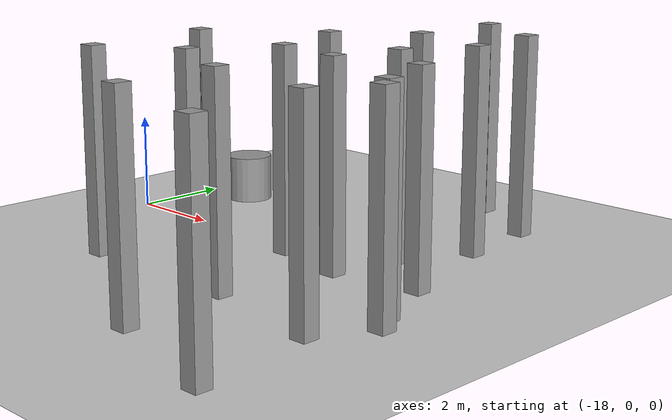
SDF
<sdf version="1.7">
 <world name="default">
  <model name="ground_plane">
   <static>1</static>
   <link name="link">
    <collision name="collision">
     <geometry><plane><normal>0 0 1</normal><size>100 100</size></plane></geometry>
     <surface>
      <contact><collide_bitmask>65535</collide_bitmask></contact>
      <friction><ode><mu>100</mu><mu2>50</mu2></ode></friction>
     </surface>
    </collision>
    <visual name="visual">
     <cast_shadows>0</cast_shadows>
     <geometry><plane><normal>0 0 1</normal><size>100 100</size></plane></geometry>
     <material>
      <script><uri>file://media/materials/scripts/gazebo.material</uri><name>Gazebo/Grey</name></script>
     </material>
    </visual>
   </link>
  </model>
  <model name="unit_cylinder_1">
   <pose>-16.8605 2.08124 0.499996 4e-06 2e-06 -0</pose>
   <link name="link">
    <inertial>
     <mass>1</mass>
     <inertia><ixx>0.145833</ixx><ixy>0</ixy><ixz>0</ixz><iyy>0.145833</iyy><iyz>0</iyz><izz>0.125</izz></inertia>
    </inertial>
    <collision name="collision">
     <geometry><cylinder><radius>0.5</radius><length>1</length></cylinder></geometry>
    </collision>
    <visual name="visual">
     <geometry><cylinder><radius>0.5</radius><length>1</length></cylinder></geometry>
     <material>
      <script><name>Gazebo/Grey</name><uri>file://media/materials/scripts/gazebo.material</uri></script>
     </material>
    </visual>
   </link>
  </model>
  <model name="unit_box_clone_9">
   <link name="link">
    <inertial>
     <mass>2.4304</mass>
     <inertia><ixx>3.54705</ixx><ixy>0</ixy><ixz>0</ixz><iyy>3.54798</iyy><iyz>0</iyz><izz>0.047215</izz></inertia>
    </inertial>
    <visual name="visual">
     <geometry><box><size>0.344761 0.338027 4.17123</size></box></geometry>
     <material>
      <script><name>Gazebo/Grey</name><uri>file://media/materials/scripts/gazebo.material</uri></script>
      <shader type="pixel"><normal_map>__default__</normal_map></shader>
      <ambient>0.3 0.3 0.3 1</ambient>
      <diffuse>0.7 0.7 0.7 1</diffuse>
      <specular>0.01 0.01 0.01 1</specular>
      <emissive>0 0 0 1</emissive>
     </material>
    </visual>
    <collision name="collision">
     <geometry><box><size>0.344761 0.338027 4.17123</size></box></geometry>
     <surface>
      <friction>
       <ode><mu>1</mu><mu2>1</mu2><fdir1>0 0 0</fdir1><slip1>0</slip1><slip2>0</slip2></ode>
       <torsional>
        <coefficient>1</coefficient>
        <patch_radius>0</patch_radius>
        <surface_radius>0</surface_radius>
        <use_patch_radius>1</use_patch_radius>
        <ode><slip>0</slip></ode>
       </torsional>
      </friction>
      <bounce><restitution_coefficient>0</restitution_coefficient><threshold>1e+06</threshold></bounce>
      <contact>
       <collide_without_contact>0</collide_without_contact>
       <collide_without_contact_bitmask>1</collide_without_contact_bitmask>
       <collide_bitmask>1</collide_bitmask>
       <ode>
        <soft_cfm>0</soft_cfm>
        <soft_erp>0.2</soft_erp>
        <kp>1e+13</kp>
        <kd>1</kd>
        <max_vel>0.01</max_vel>
        <min_depth>0</min_depth>
       </ode>
       <bullet>
        <split_impulse>1</split_impulse>
        <split_impulse_penetration_threshold>-0.01</split_impulse_penetration_threshold>
        <soft_cfm>0</soft_cfm>
        <soft_erp>0.2</soft_erp>
        <kp>1e+13</kp>
        <kd>1</kd>
       </bullet>
      </contact>
     </surface>
    </collision>
   </link>
   <static>0</static>
   <pose>-9.03364 -1.83112 2.08562 8e-06 2e-06 0.001634</pose>
  </model>
  <model name="unit_box_clone_12">
   <link name="link">
    <inertial>
     <mass>2.4304</mass>
     <inertia><ixx>3.54705</ixx><ixy>0</ixy><ixz>0</ixz><iyy>3.54798</iyy><iyz>0</iyz><izz>0.047215</izz></inertia>
    </inertial>
    <visual name="visual">
     <geometry><box><size>0.344761 0.338027 4.17123</size></box></geometry>
     <material>
      <script><name>Gazebo/Grey</name><uri>file://media/materials/scripts/gazebo.material</uri></script>
      <shader type="pixel"><normal_map>__default__</normal_map></shader>
      <ambient>0.3 0.3 0.3 1</ambient>
      <diffuse>0.7 0.7 0.7 1</diffuse>
      <specular>0.01 0.01 0.01 1</specular>
      <emissive>0 0 0 1</emissive>
     </material>
    </visual>
    <collision name="collision">
     <geometry><box><size>0.344761 0.338027 4.17123</size></box></geometry>
     <surface>
      <friction>
       <ode><mu>1</mu><mu2>1</mu2><fdir1>0 0 0</fdir1><slip1>0</slip1><slip2>0</slip2></ode>
       <torsional>
        <coefficient>1</coefficient>
        <patch_radius>0</patch_radius>
        <surface_radius>0</surface_radius>
        <use_patch_radius>1</use_patch_radius>
        <ode><slip>0</slip></ode>
       </torsional>
      </friction>
      <bounce><restitution_coefficient>0</restitution_coefficient><threshold>1e+06</threshold></bounce>
      <contact>
       <collide_without_contact>0</collide_without_contact>
       <collide_without_contact_bitmask>1</collide_without_contact_bitmask>
       <collide_bitmask>1</collide_bitmask>
       <ode>
        <soft_cfm>0</soft_cfm>
        <soft_erp>0.2</soft_erp>
        <kp>1e+13</kp>
        <kd>1</kd>
        <max_vel>0.01</max_vel>
        <min_depth>0</min_depth>
       </ode>
       <bullet>
        <split_impulse>1</split_impulse>
        <split_impulse_penetration_threshold>-0.01</split_impulse_penetration_threshold>
        <soft_cfm>0</soft_cfm>
        <soft_erp>0.2</soft_erp>
        <kp>1e+13</kp>
        <kd>1</kd>
       </bullet>
      </contact>
     </surface>
    </collision>
   </link>
   <static>0</static>
   <pose>-8.71743 -2.2826 2.08562 0 -1e-06 0.001927</pose>
  </model>
  <model name="unit_box_clone_14">
   <link name="link">
    <inertial>
     <mass>2.4304</mass>
     <inertia><ixx>3.54705</ixx><ixy>0</ixy><ixz>0</ixz><iyy>3.54798</iyy><iyz>0</iyz><izz>0.047215</izz></inertia>
    </inertial>
    <visual name="visual">
     <geometry><box><size>0.344761 0.338027 4.17123</size></box></geometry>
     <material>
      <script><name>Gazebo/Grey</name><uri>file://media/materials/scripts/gazebo.material</uri></script>
      <shader type="pixel"><normal_map>__default__</normal_map></shader>
      <ambient>0.3 0.3 0.3 1</ambient>
      <diffuse>0.7 0.7 0.7 1</diffuse>
      <specular>0.01 0.01 0.01 1</specular>
      <emissive>0 0 0 1</emissive>
     </material>
    </visual>
    <collision name="collision">
     <geometry><box><size>0.344761 0.338027 4.17123</size></box></geometry>
     <surface>
      <friction>
       <ode><mu>1</mu><mu2>1</mu2><fdir1>0 0 0</fdir1><slip1>0</slip1><slip2>0</slip2></ode>
       <torsional>
        <coefficient>1</coefficient>
        <patch_radius>0</patch_radius>
        <surface_radius>0</surface_radius>
        <use_patch_radius>1</use_patch_radius>
        <ode><slip>0</slip></ode>
       </torsional>
      </friction>
      <bounce><restitution_coefficient>0</restitution_coefficient><threshold>1e+06</threshold></bounce>
      <contact>
       <collide_without_contact>0</collide_without_contact>
       <collide_without_contact_bitmask>1</collide_without_contact_bitmask>
       <collide_bitmask>1</collide_bitmask>
       <ode>
        <soft_cfm>0</soft_cfm>
        <soft_erp>0.2</soft_erp>
        <kp>1e+13</kp>
        <kd>1</kd>
        <max_vel>0.01</max_vel>
        <min_depth>0</min_depth>
       </ode>
       <bullet>
        <split_impulse>1</split_impulse>
        <split_impulse_penetration_threshold>-0.01</split_impulse_penetration_threshold>
        <soft_cfm>0</soft_cfm>
        <soft_erp>0.2</soft_erp>
        <kp>1e+13</kp>
        <kd>1</kd>
       </bullet>
      </contact>
     </surface>
    </collision>
   </link>
   <static>0</static>
   <pose>-9.62797 -0.350891 2.08562 1e-06 1e-06 0.002027</pose>
  </model>
  <model name="unit_box_clone_15">
   <link name="link">
    <inertial>
     <mass>2.4304</mass>
     <inertia><ixx>3.54705</ixx><ixy>0</ixy><ixz>0</ixz><iyy>3.54798</iyy><iyz>0</iyz><izz>0.047215</izz></inertia>
    </inertial>
    <visual name="visual">
     <geometry><box><size>0.344761 0.338027 4.17123</size></box></geometry>
     <material>
      <script><name>Gazebo/Grey</name><uri>file://media/materials/scripts/gazebo.material</uri></script>
      <shader type="pixel"><normal_map>__default__</normal_map></shader>
      <ambient>0.3 0.3 0.3 1</ambient>
      <diffuse>0.7 0.7 0.7 1</diffuse>
      <specular>0.01 0.01 0.01 1</specular>
      <emissive>0 0 0 1</emissive>
     </material>
    </visual>
    <collision name="collision">
     <geometry><box><size>0.344761 0.338027 4.17123</size></box></geometry>
     <surface>
      <friction>
       <ode><mu>1</mu><mu2>1</mu2><fdir1>0 0 0</fdir1><slip1>0</slip1><slip2>0</slip2></ode>
       <torsional>
        <coefficient>1</coefficient>
        <patch_radius>0</patch_radius>
        <surface_radius>0</surface_radius>
        <use_patch_radius>1</use_patch_radius>
        <ode><slip>0</slip></ode>
       </torsional>
      </friction>
      <bounce><restitution_coefficient>0</restitution_coefficient><threshold>1e+06</threshold></bounce>
      <contact>
       <collide_without_contact>0</collide_without_contact>
       <collide_without_contact_bitmask>1</collide_without_contact_bitmask>
       <collide_bitmask>1</collide_bitmask>
       <ode>
        <soft_cfm>0</soft_cfm>
        <soft_erp>0.2</soft_erp>
        <kp>1e+13</kp>
        <kd>1</kd>
        <max_vel>0.01</max_vel>
        <min_depth>0</min_depth>
       </ode>
       <bullet>
        <split_impulse>1</split_impulse>
        <split_impulse_penetration_threshold>-0.01</split_impulse_penetration_threshold>
        <soft_cfm>0</soft_cfm>
        <soft_erp>0.2</soft_erp>
        <kp>1e+13</kp>
        <kd>1</kd>
       </bullet>
      </contact>
     </surface>
    </collision>
   </link>
   <static>0</static>
   <pose>-10.3749 2.15662 2.08562 -4e-06 -4e-06 0.001895</pose>
  </model>
  <model name="unit_box_clone_16">
   <link name="link">
    <inertial>
     <mass>2.4304</mass>
     <inertia><ixx>3.54705</ixx><ixy>0</ixy><ixz>0</ixz><iyy>3.54798</iyy><iyz>0</iyz><izz>0.047215</izz></inertia>
    </inertial>
    <visual name="visual">
     <geometry><box><size>0.344761 0.338027 4.17123</size></box></geometry>
     <material>
      <script><name>Gazebo/Grey</name><uri>file://media/materials/scripts/gazebo.material</uri></script>
      <shader type="pixel"><normal_map>__default__</normal_map></shader>
      <ambient>0.3 0.3 0.3 1</ambient>
      <diffuse>0.7 0.7 0.7 1</diffuse>
      <specular>0.01 0.01 0.01 1</specular>
      <emissive>0 0 0 1</emissive>
     </material>
    </visual>
    <collision name="collision">
     <geometry><box><size>0.344761 0.338027 4.17123</size></box></geometry>
     <surface>
      <friction>
       <ode><mu>1</mu><mu2>1</mu2><fdir1>0 0 0</fdir1><slip1>0</slip1><slip2>0</slip2></ode>
       <torsional>
        <coefficient>1</coefficient>
        <patch_radius>0</patch_radius>
        <surface_radius>0</surface_radius>
        <use_patch_radius>1</use_patch_radius>
        <ode><slip>0</slip></ode>
       </torsional>
      </friction>
      <bounce><restitution_coefficient>0</restitution_coefficient><threshold>1e+06</threshold></bounce>
      <contact>
       <collide_without_contact>0</collide_without_contact>
       <collide_without_contact_bitmask>1</collide_without_contact_bitmask>
       <collide_bitmask>1</collide_bitmask>
       <ode>
        <soft_cfm>0</soft_cfm>
        <soft_erp>0.2</soft_erp>
        <kp>1e+13</kp>
        <kd>1</kd>
        <max_vel>0.01</max_vel>
        <min_depth>0</min_depth>
       </ode>
       <bullet>
        <split_impulse>1</split_impulse>
        <split_impulse_penetration_threshold>-0.01</split_impulse_penetration_threshold>
        <soft_cfm>0</soft_cfm>
        <soft_erp>0.2</soft_erp>
        <kp>1e+13</kp>
        <kd>1</kd>
       </bullet>
      </contact>
     </surface>
    </collision>
   </link>
   <static>0</static>
   <pose>-11.1024 0.762889 2.08562 -4e-06 -1e-06 -0.002996</pose>
  </model>
  <model name="unit_box_clone_17">
   <link name="link">
    <inertial>
     <mass>2.4304</mass>
     <inertia><ixx>3.54705</ixx><ixy>0</ixy><ixz>0</ixz><iyy>3.54798</iyy><iyz>0</iyz><izz>0.047215</izz></inertia>
    </inertial>
    <visual name="visual">
     <geometry><box><size>0.344761 0.338027 4.17123</size></box></geometry>
     <material>
      <script><name>Gazebo/Grey</name><uri>file://media/materials/scripts/gazebo.material</uri></script>
      <shader type="pixel"><normal_map>__default__</normal_map></shader>
      <ambient>0.3 0.3 0.3 1</ambient>
      <diffuse>0.7 0.7 0.7 1</diffuse>
      <specular>0.01 0.01 0.01 1</specular>
      <emissive>0 0 0 1</emissive>
     </material>
    </visual>
    <collision name="collision">
     <geometry><box><size>0.344761 0.338027 4.17123</size></box></geometry>
     <surface>
      <friction>
       <ode><mu>1</mu><mu2>1</mu2><fdir1>0 0 0</fdir1><slip1>0</slip1><slip2>0</slip2></ode>
       <torsional>
        <coefficient>1</coefficient>
        <patch_radius>0</patch_radius>
        <surface_radius>0</surface_radius>
        <use_patch_radius>1</use_patch_radius>
        <ode><slip>0</slip></ode>
       </torsional>
      </friction>
      <bounce><restitution_coefficient>0</restitution_coefficient><threshold>1e+06</threshold></bounce>
      <contact>
       <collide_without_contact>0</collide_without_contact>
       <collide_without_contact_bitmask>1</collide_without_contact_bitmask>
       <collide_bitmask>1</collide_bitmask>
       <ode>
        <soft_cfm>0</soft_cfm>
        <soft_erp>0.2</soft_erp>
        <kp>1e+13</kp>
        <kd>1</kd>
        <max_vel>0.01</max_vel>
        <min_depth>0</min_depth>
       </ode>
       <bullet>
        <split_impulse>1</split_impulse>
        <split_impulse_penetration_threshold>-0.01</split_impulse_penetration_threshold>
        <soft_cfm>0</soft_cfm>
        <soft_erp>0.2</soft_erp>
        <kp>1e+13</kp>
        <kd>1</kd>
       </bullet>
      </contact>
     </surface>
    </collision>
   </link>
   <static>0</static>
   <pose>-12 -2.99933 2.08562 1e-06 2e-06 0.002402</pose>
  </model>
  <model name="unit_box_clone_18">
   <link name="link">
    <inertial>
     <mass>2.4304</mass>
     <inertia><ixx>3.54705</ixx><ixy>0</ixy><ixz>0</ixz><iyy>3.54798</iyy><iyz>0</iyz><izz>0.047215</izz></inertia>
    </inertial>
    <visual name="visual">
     <geometry><box><size>0.344761 0.338027 4.17123</size></box></geometry>
     <material>
      <script><name>Gazebo/Grey</name><uri>file://media/materials/scripts/gazebo.material</uri></script>
      <shader type="pixel"><normal_map>__default__</normal_map></shader>
      <ambient>0.3 0.3 0.3 1</ambient>
      <diffuse>0.7 0.7 0.7 1</diffuse>
      <specular>0.01 0.01 0.01 1</specular>
      <emissive>0 0 0 1</emissive>
     </material>
    </visual>
    <collision name="collision">
     <geometry><box><size>0.344761 0.338027 4.17123</size></box></geometry>
     <surface>
      <friction>
       <ode><mu>1</mu><mu2>1</mu2><fdir1>0 0 0</fdir1><slip1>0</slip1><slip2>0</slip2></ode>
       <torsional>
        <coefficient>1</coefficient>
        <patch_radius>0</patch_radius>
        <surface_radius>0</surface_radius>
        <use_patch_radius>1</use_patch_radius>
        <ode><slip>0</slip></ode>
       </torsional>
      </friction>
      <bounce><restitution_coefficient>0</restitution_coefficient><threshold>1e+06</threshold></bounce>
      <contact>
       <collide_without_contact>0</collide_without_contact>
       <collide_without_contact_bitmask>1</collide_without_contact_bitmask>
       <collide_bitmask>1</collide_bitmask>
       <ode>
        <soft_cfm>0</soft_cfm>
        <soft_erp>0.2</soft_erp>
        <kp>1e+13</kp>
        <kd>1</kd>
        <max_vel>0.01</max_vel>
        <min_depth>0</min_depth>
       </ode>
       <bullet>
        <split_impulse>1</split_impulse>
        <split_impulse_penetration_threshold>-0.01</split_impulse_penetration_threshold>
        <soft_cfm>0</soft_cfm>
        <soft_erp>0.2</soft_erp>
        <kp>1e+13</kp>
        <kd>1</kd>
       </bullet>
      </contact>
     </surface>
    </collision>
   </link>
   <static>0</static>
   <pose>-11.4364 -0.684501 2.08562 0 -4.8e-05 -0.003025</pose>
  </model>
  <model name="unit_box_clone_19">
   <link name="link">
    <inertial>
     <mass>2.4304</mass>
     <inertia><ixx>3.54705</ixx><ixy>0</ixy><ixz>0</ixz><iyy>3.54798</iyy><iyz>0</iyz><izz>0.047215</izz></inertia>
    </inertial>
    <visual name="visual">
     <geometry><box><size>0.344761 0.338027 4.17123</size></box></geometry>
     <material>
      <script><name>Gazebo/Grey</name><uri>file://media/materials/scripts/gazebo.material</uri></script>
      <shader type="pixel"><normal_map>__default__</normal_map></shader>
      <ambient>0.3 0.3 0.3 1</ambient>
      <diffuse>0.7 0.7 0.7 1</diffuse>
      <specular>0.01 0.01 0.01 1</specular>
      <emissive>0 0 0 1</emissive>
     </material>
    </visual>
    <collision name="collision">
     <geometry><box><size>0.344761 0.338027 4.17123</size></box></geometry>
     <surface>
      <friction>
       <ode><mu>1</mu><mu2>1</mu2><fdir1>0 0 0</fdir1><slip1>0</slip1><slip2>0</slip2></ode>
       <torsional>
        <coefficient>1</coefficient>
        <patch_radius>0</patch_radius>
        <surface_radius>0</surface_radius>
        <use_patch_radius>1</use_patch_radius>
        <ode><slip>0</slip></ode>
       </torsional>
      </friction>
      <bounce><restitution_coefficient>0</restitution_coefficient><threshold>1e+06</threshold></bounce>
      <contact>
       <collide_without_contact>0</collide_without_contact>
       <collide_without_contact_bitmask>1</collide_without_contact_bitmask>
       <collide_bitmask>1</collide_bitmask>
       <ode>
        <soft_cfm>0</soft_cfm>
        <soft_erp>0.2</soft_erp>
        <kp>1e+13</kp>
        <kd>1</kd>
        <max_vel>0.01</max_vel>
        <min_depth>0</min_depth>
       </ode>
       <bullet>
        <split_impulse>1</split_impulse>
        <split_impulse_penetration_threshold>-0.01</split_impulse_penetration_threshold>
        <soft_cfm>0</soft_cfm>
        <soft_erp>0.2</soft_erp>
        <kp>1e+13</kp>
        <kd>1</kd>
       </bullet>
      </contact>
     </surface>
    </collision>
   </link>
   <static>0</static>
   <pose>-13.8179 1.63016 2.08562 -1e-06 1.1e-05 0.001608</pose>
  </model>
  <model name="unit_box_clone_20">
   <link name="link">
    <inertial>
     <mass>2.4304</mass>
     <inertia><ixx>3.54705</ixx><ixy>0</ixy><ixz>0</ixz><iyy>3.54798</iyy><iyz>0</iyz><izz>0.047215</izz></inertia>
    </inertial>
    <visual name="visual">
     <geometry><box><size>0.344761 0.338027 4.17123</size></box></geometry>
     <material>
      <script><name>Gazebo/Grey</name><uri>file://media/materials/scripts/gazebo.material</uri></script>
      <shader type="pixel"><normal_map>__default__</normal_map></shader>
      <ambient>0.3 0.3 0.3 1</ambient>
      <diffuse>0.7 0.7 0.7 1</diffuse>
      <specular>0.01 0.01 0.01 1</specular>
      <emissive>0 0 0 1</emissive>
     </material>
    </visual>
    <collision name="collision">
     <geometry><box><size>0.344761 0.338027 4.17123</size></box></geometry>
     <surface>
      <friction>
       <ode><mu>1</mu><mu2>1</mu2><fdir1>0 0 0</fdir1><slip1>0</slip1><slip2>0</slip2></ode>
       <torsional>
        <coefficient>1</coefficient>
        <patch_radius>0</patch_radius>
        <surface_radius>0</surface_radius>
        <use_patch_radius>1</use_patch_radius>
        <ode><slip>0</slip></ode>
       </torsional>
      </friction>
      <bounce><restitution_coefficient>0</restitution_coefficient><threshold>1e+06</threshold></bounce>
      <contact>
       <collide_without_contact>0</collide_without_contact>
       <collide_without_contact_bitmask>1</collide_without_contact_bitmask>
       <collide_bitmask>1</collide_bitmask>
       <ode>
        <soft_cfm>0</soft_cfm>
        <soft_erp>0.2</soft_erp>
        <kp>1e+13</kp>
        <kd>1</kd>
        <max_vel>0.01</max_vel>
        <min_depth>0</min_depth>
       </ode>
       <bullet>
        <split_impulse>1</split_impulse>
        <split_impulse_penetration_threshold>-0.01</split_impulse_penetration_threshold>
        <soft_cfm>0</soft_cfm>
        <soft_erp>0.2</soft_erp>
        <kp>1e+13</kp>
        <kd>1</kd>
       </bullet>
      </contact>
     </surface>
    </collision>
   </link>
   <static>0</static>
   <pose>-9.36759 -3.44244 2.08562 2e-06 -1.6e-05 0.001913</pose>
  </model>
  <model name="unit_box_clone_21">
   <link name="link">
    <inertial>
     <mass>2.4304</mass>
     <inertia><ixx>3.54705</ixx><ixy>0</ixy><ixz>0</ixz><iyy>3.54798</iyy><iyz>0</iyz><izz>0.047215</izz></inertia>
    </inertial>
    <visual name="visual">
     <geometry><box><size>0.344761 0.338027 4.17123</size></box></geometry>
     <material>
      <script><name>Gazebo/Grey</name><uri>file://media/materials/scripts/gazebo.material</uri></script>
      <shader type="pixel"><normal_map>__default__</normal_map></shader>
      <ambient>0.3 0.3 0.3 1</ambient>
      <diffuse>0.7 0.7 0.7 1</diffuse>
      <specular>0.01 0.01 0.01 1</specular>
      <emissive>0 0 0 1</emissive>
     </material>
    </visual>
    <collision name="collision">
     <geometry><box><size>0.344761 0.338027 4.17123</size></box></geometry>
     <surface>
      <friction>
       <ode><mu>1</mu><mu2>1</mu2><fdir1>0 0 0</fdir1><slip1>0</slip1><slip2>0</slip2></ode>
       <torsional>
        <coefficient>1</coefficient>
        <patch_radius>0</patch_radius>
        <surface_radius>0</surface_radius>
        <use_patch_radius>1</use_patch_radius>
        <ode><slip>0</slip></ode>
       </torsional>
      </friction>
      <bounce><restitution_coefficient>0</restitution_coefficient><threshold>1e+06</threshold></bounce>
      <contact>
       <collide_without_contact>0</collide_without_contact>
       <collide_without_contact_bitmask>1</collide_without_contact_bitmask>
       <collide_bitmask>1</collide_bitmask>
       <ode>
        <soft_cfm>0</soft_cfm>
        <soft_erp>0.2</soft_erp>
        <kp>1e+13</kp>
        <kd>1</kd>
        <max_vel>0.01</max_vel>
        <min_depth>0</min_depth>
       </ode>
       <bullet>
        <split_impulse>1</split_impulse>
        <split_impulse_penetration_threshold>-0.01</split_impulse_penetration_threshold>
        <soft_cfm>0</soft_cfm>
        <soft_erp>0.2</soft_erp>
        <kp>1e+13</kp>
        <kd>1</kd>
       </bullet>
      </contact>
     </surface>
    </collision>
   </link>
   <static>0</static>
   <pose>-13.0782 -0.350779 2.08562 1e-06 -0 0.001185</pose>
  </model>
  <model name="unit_box_clone_22">
   <link name="link">
    <inertial>
     <mass>2.4304</mass>
     <inertia><ixx>3.54705</ixx><ixy>0</ixy><ixz>0</ixz><iyy>3.54798</iyy><iyz>0</iyz><izz>0.047215</izz></inertia>
    </inertial>
    <visual name="visual">
     <geometry><box><size>0.344761 0.338027 4.17123</size></box></geometry>
     <material>
      <script><name>Gazebo/Grey</name><uri>file://media/materials/scripts/gazebo.material</uri></script>
      <shader type="pixel"><normal_map>__default__</normal_map></shader>
      <ambient>0.3 0.3 0.3 1</ambient>
      <diffuse>0.7 0.7 0.7 1</diffuse>
      <specular>0.01 0.01 0.01 1</specular>
      <emissive>0 0 0 1</emissive>
     </material>
    </visual>
    <collision name="collision">
     <geometry><box><size>0.344761 0.338027 4.17123</size></box></geometry>
     <surface>
      <friction>
       <ode><mu>1</mu><mu2>1</mu2><fdir1>0 0 0</fdir1><slip1>0</slip1><slip2>0</slip2></ode>
       <torsional>
        <coefficient>1</coefficient>
        <patch_radius>0</patch_radius>
        <surface_radius>0</surface_radius>
        <use_patch_radius>1</use_patch_radius>
        <ode><slip>0</slip></ode>
       </torsional>
      </friction>
      <bounce><restitution_coefficient>0</restitution_coefficient><threshold>1e+06</threshold></bounce>
      <contact>
       <collide_without_contact>0</collide_without_contact>
       <collide_without_contact_bitmask>1</collide_without_contact_bitmask>
       <collide_bitmask>1</collide_bitmask>
       <ode>
        <soft_cfm>0</soft_cfm>
        <soft_erp>0.2</soft_erp>
        <kp>1e+13</kp>
        <kd>1</kd>
        <max_vel>0.01</max_vel>
        <min_depth>0</min_depth>
       </ode>
       <bullet>
        <split_impulse>1</split_impulse>
        <split_impulse_penetration_threshold>-0.01</split_impulse_penetration_threshold>
        <soft_cfm>0</soft_cfm>
        <soft_erp>0.2</soft_erp>
        <kp>1e+13</kp>
        <kd>1</kd>
       </bullet>
      </contact>
     </surface>
    </collision>
   </link>
   <static>0</static>
   <pose>-8.99964 -5.99953 2.08562 0 2e-06 0.000211</pose>
  </model>
  <model name="unit_box_clone_25">
   <link name="link">
    <inertial>
     <mass>2.4304</mass>
     <inertia><ixx>3.54705</ixx><ixy>0</ixy><ixz>0</ixz><iyy>3.54798</iyy><iyz>0</iyz><izz>0.047215</izz></inertia>
    </inertial>
    <visual name="visual">
     <geometry><box><size>0.344761 0.338027 4.17123</size></box></geometry>
     <material>
      <script><name>Gazebo/Grey</name><uri>file://media/materials/scripts/gazebo.material</uri></script>
      <shader type="pixel"><normal_map>__default__</normal_map></shader>
      <ambient>0.3 0.3 0.3 1</ambient>
      <diffuse>0.7 0.7 0.7 1</diffuse>
      <specular>0.01 0.01 0.01 1</specular>
      <emissive>0 0 0 1</emissive>
     </material>
    </visual>
    <collision name="collision">
     <geometry><box><size>0.344761 0.338027 4.17123</size></box></geometry>
     <surface>
      <friction>
       <ode><mu>1</mu><mu2>1</mu2><fdir1>0 0 0</fdir1><slip1>0</slip1><slip2>0</slip2></ode>
       <torsional>
        <coefficient>1</coefficient>
        <patch_radius>0</patch_radius>
        <surface_radius>0</surface_radius>
        <use_patch_radius>1</use_patch_radius>
        <ode><slip>0</slip></ode>
       </torsional>
      </friction>
      <bounce><restitution_coefficient>0</restitution_coefficient><threshold>1e+06</threshold></bounce>
      <contact>
       <collide_without_contact>0</collide_without_contact>
       <collide_without_contact_bitmask>1</collide_without_contact_bitmask>
       <collide_bitmask>1</collide_bitmask>
       <ode>
        <soft_cfm>0</soft_cfm>
        <soft_erp>0.2</soft_erp>
        <kp>1e+13</kp>
        <kd>1</kd>
        <max_vel>0.01</max_vel>
        <min_depth>0</min_depth>
       </ode>
       <bullet>
        <split_impulse>1</split_impulse>
        <split_impulse_penetration_threshold>-0.01</split_impulse_penetration_threshold>
        <soft_cfm>0</soft_cfm>
        <soft_erp>0.2</soft_erp>
        <kp>1e+13</kp>
        <kd>1</kd>
       </bullet>
      </contact>
     </surface>
    </collision>
   </link>
   <static>0</static>
   <pose>-11.7975 -5.22673 2.08562 -1.6e-05 -3e-06 0.002424</pose>
  </model>
  <model name="unit_box_clone_26">
   <link name="link">
    <inertial>
     <mass>2.4304</mass>
     <inertia><ixx>3.54705</ixx><ixy>0</ixy><ixz>0</ixz><iyy>3.54798</iyy><iyz>0</iyz><izz>0.047215</izz></inertia>
    </inertial>
    <visual name="visual">
     <geometry><box><size>0.344761 0.338027 4.17123</size></box></geometry>
     <material>
      <script><name>Gazebo/Grey</name><uri>file://media/materials/scripts/gazebo.material</uri></script>
      <shader type="pixel"><normal_map>__default__</normal_map></shader>
      <ambient>0.3 0.3 0.3 1</ambient>
      <diffuse>0.7 0.7 0.7 1</diffuse>
      <specular>0.01 0.01 0.01 1</specular>
      <emissive>0 0 0 1</emissive>
     </material>
    </visual>
    <collision name="collision">
     <geometry><box><size>0.344761 0.338027 4.17123</size></box></geometry>
     <surface>
      <friction>
       <ode><mu>1</mu><mu2>1</mu2><fdir1>0 0 0</fdir1><slip1>0</slip1><slip2>0</slip2></ode>
       <torsional>
        <coefficient>1</coefficient>
        <patch_radius>0</patch_radius>
        <surface_radius>0</surface_radius>
        <use_patch_radius>1</use_patch_radius>
        <ode><slip>0</slip></ode>
       </torsional>
      </friction>
      <bounce><restitution_coefficient>0</restitution_coefficient><threshold>1e+06</threshold></bounce>
      <contact>
       <collide_without_contact>0</collide_without_contact>
       <collide_without_contact_bitmask>1</collide_without_contact_bitmask>
       <collide_bitmask>1</collide_bitmask>
       <ode>
        <soft_cfm>0</soft_cfm>
        <soft_erp>0.2</soft_erp>
        <kp>1e+13</kp>
        <kd>1</kd>
        <max_vel>0.01</max_vel>
        <min_depth>0</min_depth>
       </ode>
       <bullet>
        <split_impulse>1</split_impulse>
        <split_impulse_penetration_threshold>-0.01</split_impulse_penetration_threshold>
        <soft_cfm>0</soft_cfm>
        <soft_erp>0.2</soft_erp>
        <kp>1e+13</kp>
        <kd>1</kd>
       </bullet>
      </contact>
     </surface>
    </collision>
   </link>
   <static>0</static>
   <pose>-12.2945 4.99256 2.08562 3e-06 -0 0.002808</pose>
  </model>
  <model name="unit_box_clone_27">
   <link name="link">
    <inertial>
     <mass>2.4304</mass>
     <inertia><ixx>3.54705</ixx><ixy>0</ixy><ixz>0</ixz><iyy>3.54798</iyy><iyz>0</iyz><izz>0.047215</izz></inertia>
    </inertial>
    <visual name="visual">
     <geometry><box><size>0.344761 0.338027 4.17123</size></box></geometry>
     <material>
      <script><name>Gazebo/Grey</name><uri>file://media/materials/scripts/gazebo.material</uri></script>
      <shader type="pixel"><normal_map>__default__</normal_map></shader>
      <ambient>0.3 0.3 0.3 1</ambient>
      <diffuse>0.7 0.7 0.7 1</diffuse>
      <specular>0.01 0.01 0.01 1</specular>
      <emissive>0 0 0 1</emissive>
     </material>
    </visual>
    <collision name="collision">
     <geometry><box><size>0.344761 0.338027 4.17123</size></box></geometry>
     <surface>
      <friction>
       <ode><mu>1</mu><mu2>1</mu2><fdir1>0 0 0</fdir1><slip1>0</slip1><slip2>0</slip2></ode>
       <torsional>
        <coefficient>1</coefficient>
        <patch_radius>0</patch_radius>
        <surface_radius>0</surface_radius>
        <use_patch_radius>1</use_patch_radius>
        <ode><slip>0</slip></ode>
       </torsional>
      </friction>
      <bounce><restitution_coefficient>0</restitution_coefficient><threshold>1e+06</threshold></bounce>
      <contact>
       <collide_without_contact>0</collide_without_contact>
       <collide_without_contact_bitmask>1</collide_without_contact_bitmask>
       <collide_bitmask>1</collide_bitmask>
       <ode>
        <soft_cfm>0</soft_cfm>
        <soft_erp>0.2</soft_erp>
        <kp>1e+13</kp>
        <kd>1</kd>
        <max_vel>0.01</max_vel>
        <min_depth>0</min_depth>
       </ode>
       <bullet>
        <split_impulse>1</split_impulse>
        <split_impulse_penetration_threshold>-0.01</split_impulse_penetration_threshold>
        <soft_cfm>0</soft_cfm>
        <soft_erp>0.2</soft_erp>
        <kp>1e+13</kp>
        <kd>1</kd>
       </bullet>
      </contact>
     </surface>
    </collision>
   </link>
   <static>0</static>
   <pose>-12.3476 2.82509 2.08562 0 -0 0.001923</pose>
  </model>
  <model name="unit_box_clone_28">
   <link name="link">
    <inertial>
     <mass>2.4304</mass>
     <inertia><ixx>3.54705</ixx><ixy>0</ixy><ixz>0</ixz><iyy>3.54798</iyy><iyz>0</iyz><izz>0.047215</izz></inertia>
    </inertial>
    <visual name="visual">
     <geometry><box><size>0.344761 0.338027 4.17123</size></box></geometry>
     <material>
      <script><name>Gazebo/Grey</name><uri>file://media/materials/scripts/gazebo.material</uri></script>
      <shader type="pixel"><normal_map>__default__</normal_map></shader>
      <ambient>0.3 0.3 0.3 1</ambient>
      <diffuse>0.7 0.7 0.7 1</diffuse>
      <specular>0.01 0.01 0.01 1</specular>
      <emissive>0 0 0 1</emissive>
     </material>
    </visual>
    <collision name="collision">
     <geometry><box><size>0.344761 0.338027 4.17123</size></box></geometry>
     <surface>
      <friction>
       <ode><mu>1</mu><mu2>1</mu2><fdir1>0 0 0</fdir1><slip1>0</slip1><slip2>0</slip2></ode>
       <torsional>
        <coefficient>1</coefficient>
        <patch_radius>0</patch_radius>
        <surface_radius>0</surface_radius>
        <use_patch_radius>1</use_patch_radius>
        <ode><slip>0</slip></ode>
       </torsional>
      </friction>
      <bounce><restitution_coefficient>0</restitution_coefficient><threshold>1e+06</threshold></bounce>
      <contact>
       <collide_without_contact>0</collide_without_contact>
       <collide_without_contact_bitmask>1</collide_without_contact_bitmask>
       <collide_bitmask>1</collide_bitmask>
       <ode>
        <soft_cfm>0</soft_cfm>
        <soft_erp>0.2</soft_erp>
        <kp>1e+13</kp>
        <kd>1</kd>
        <max_vel>0.01</max_vel>
        <min_depth>0</min_depth>
       </ode>
       <bullet>
        <split_impulse>1</split_impulse>
        <split_impulse_penetration_threshold>-0.01</split_impulse_penetration_threshold>
        <soft_cfm>0</soft_cfm>
        <soft_erp>0.2</soft_erp>
        <kp>1e+13</kp>
        <kd>1</kd>
       </bullet>
      </contact>
     </surface>
    </collision>
   </link>
   <static>0</static>
   <pose>-10.5995 3.9999 2.08562 -3e-06 -0 0.001637</pose>
  </model>
  <model name="unit_box_clone_29">
   <link name="link">
    <inertial>
     <mass>2.4304</mass>
     <inertia><ixx>3.54705</ixx><ixy>0</ixy><ixz>0</ixz><iyy>3.54798</iyy><iyz>0</iyz><izz>0.047215</izz></inertia>
    </inertial>
    <visual name="visual">
     <geometry><box><size>0.344761 0.338027 4.17123</size></box></geometry>
     <material>
      <script><name>Gazebo/Grey</name><uri>file://media/materials/scripts/gazebo.material</uri></script>
      <shader type="pixel"><normal_map>__default__</normal_map></shader>
      <ambient>0.3 0.3 0.3 1</ambient>
      <diffuse>0.7 0.7 0.7 1</diffuse>
      <specular>0.01 0.01 0.01 1</specular>
      <emissive>0 0 0 1</emissive>
     </material>
    </visual>
    <collision name="collision">
     <geometry><box><size>0.344761 0.338027 4.17123</size></box></geometry>
     <surface>
      <friction>
       <ode><mu>1</mu><mu2>1</mu2><fdir1>0 0 0</fdir1><slip1>0</slip1><slip2>0</slip2></ode>
       <torsional>
        <coefficient>1</coefficient>
        <patch_radius>0</patch_radius>
        <surface_radius>0</surface_radius>
        <use_patch_radius>1</use_patch_radius>
        <ode><slip>0</slip></ode>
       </torsional>
      </friction>
      <bounce><restitution_coefficient>0</restitution_coefficient><threshold>1e+06</threshold></bounce>
      <contact>
       <collide_without_contact>0</collide_without_contact>
       <collide_without_contact_bitmask>1</collide_without_contact_bitmask>
       <collide_bitmask>1</collide_bitmask>
       <ode>
        <soft_cfm>0</soft_cfm>
        <soft_erp>0.2</soft_erp>
        <kp>1e+13</kp>
        <kd>1</kd>
        <max_vel>0.01</max_vel>
        <min_depth>0</min_depth>
       </ode>
       <bullet>
        <split_impulse>1</split_impulse>
        <split_impulse_penetration_threshold>-0.01</split_impulse_penetration_threshold>
        <soft_cfm>0</soft_cfm>
        <soft_erp>0.2</soft_erp>
        <kp>1e+13</kp>
        <kd>1</kd>
       </bullet>
      </contact>
     </surface>
    </collision>
   </link>
   <static>0</static>
   <pose>-15.5882 -2.99933 2.08562 1e-06 2e-06 0.002402</pose>
  </model>
  <model name="unit_box_clone_30">
   <link name="link">
    <inertial>
     <mass>2.4304</mass>
     <inertia><ixx>3.54705</ixx><ixy>0</ixy><ixz>0</ixz><iyy>3.54798</iyy><iyz>0</iyz><izz>0.047215</izz></inertia>
    </inertial>
    <visual name="visual">
     <geometry><box><size>0.344761 0.338027 4.17123</size></box></geometry>
     <material>
      <script><name>Gazebo/Grey</name><uri>file://media/materials/scripts/gazebo.material</uri></script>
      <shader type="pixel"><normal_map>__default__</normal_map></shader>
      <ambient>0.3 0.3 0.3 1</ambient>
      <diffuse>0.7 0.7 0.7 1</diffuse>
      <specular>0.01 0.01 0.01 1</specular>
      <emissive>0 0 0 1</emissive>
     </material>
    </visual>
    <collision name="collision">
     <geometry><box><size>0.344761 0.338027 4.17123</size></box></geometry>
     <surface>
      <friction>
       <ode><mu>1</mu><mu2>1</mu2><fdir1>0 0 0</fdir1><slip1>0</slip1><slip2>0</slip2></ode>
       <torsional>
        <coefficient>1</coefficient>
        <patch_radius>0</patch_radius>
        <surface_radius>0</surface_radius>
        <use_patch_radius>1</use_patch_radius>
        <ode><slip>0</slip></ode>
       </torsional>
      </friction>
      <bounce><restitution_coefficient>0</restitution_coefficient><threshold>1e+06</threshold></bounce>
      <contact>
       <collide_without_contact>0</collide_without_contact>
       <collide_without_contact_bitmask>1</collide_without_contact_bitmask>
       <collide_bitmask>1</collide_bitmask>
       <ode>
        <soft_cfm>0</soft_cfm>
        <soft_erp>0.2</soft_erp>
        <kp>1e+13</kp>
        <kd>1</kd>
        <max_vel>0.01</max_vel>
        <min_depth>0</min_depth>
       </ode>
       <bullet>
        <split_impulse>1</split_impulse>
        <split_impulse_penetration_threshold>-0.01</split_impulse_penetration_threshold>
        <soft_cfm>0</soft_cfm>
        <soft_erp>0.2</soft_erp>
        <kp>1e+13</kp>
        <kd>1</kd>
       </bullet>
      </contact>
     </surface>
    </collision>
   </link>
   <static>0</static>
   <pose>-14 -2.00007 2.08562 0 2e-06 -0.000545</pose>
  </model>
  <model name="unit_box_clone_31">
   <link name="link">
    <inertial>
     <mass>2.4304</mass>
     <inertia><ixx>3.54705</ixx><ixy>0</ixy><ixz>0</ixz><iyy>3.54798</iyy><iyz>0</iyz><izz>0.047215</izz></inertia>
    </inertial>
    <visual name="visual">
     <geometry><box><size>0.344761 0.338027 4.17123</size></box></geometry>
     <material>
      <script><name>Gazebo/Grey</name><uri>file://media/materials/scripts/gazebo.material</uri></script>
      <shader type="pixel"><normal_map>__default__</normal_map></shader>
      <ambient>0.3 0.3 0.3 1</ambient>
      <diffuse>0.7 0.7 0.7 1</diffuse>
      <specular>0.01 0.01 0.01 1</specular>
      <emissive>0 0 0 1</emissive>
     </material>
    </visual>
    <collision name="collision">
     <geometry><box><size>0.344761 0.338027 4.17123</size></box></geometry>
     <surface>
      <friction>
       <ode><mu>1</mu><mu2>1</mu2><fdir1>0 0 0</fdir1><slip1>0</slip1><slip2>0</slip2></ode>
       <torsional>
        <coefficient>1</coefficient>
        <patch_radius>0</patch_radius>
        <surface_radius>0</surface_radius>
        <use_patch_radius>1</use_patch_radius>
        <ode><slip>0</slip></ode>
       </torsional>
      </friction>
      <bounce><restitution_coefficient>0</restitution_coefficient><threshold>1e+06</threshold></bounce>
      <contact>
       <collide_without_contact>0</collide_without_contact>
       <collide_without_contact_bitmask>1</collide_without_contact_bitmask>
       <collide_bitmask>1</collide_bitmask>
       <ode>
        <soft_cfm>0</soft_cfm>
        <soft_erp>0.2</soft_erp>
        <kp>1e+13</kp>
        <kd>1</kd>
        <max_vel>0.01</max_vel>
        <min_depth>0</min_depth>
       </ode>
       <bullet>
        <split_impulse>1</split_impulse>
        <split_impulse_penetration_threshold>-0.01</split_impulse_penetration_threshold>
        <soft_cfm>0</soft_cfm>
        <soft_erp>0.2</soft_erp>
        <kp>1e+13</kp>
        <kd>1</kd>
       </bullet>
      </contact>
     </surface>
    </collision>
   </link>
   <static>0</static>
   <pose>-15.9999 -0.000203 2.08562 1.1e-05 1e-06 -0.001116</pose>
  </model>
 </world>
</sdf>
